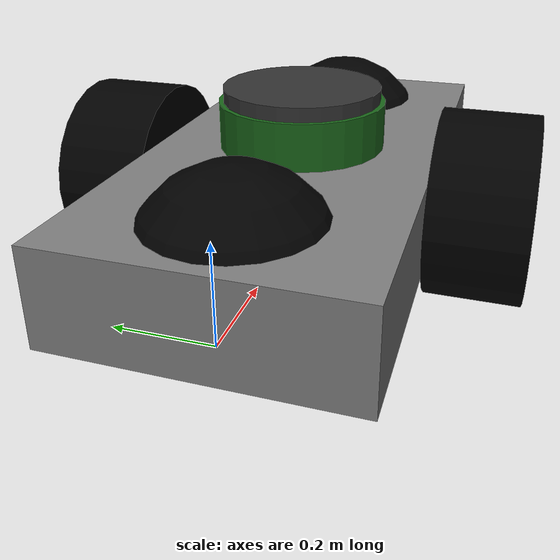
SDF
<?xml version="1.0" ?>
<sdf version="1.8">
  <model name="myrobot">
    <pose>0 0 0 0 0 0</pose>

    <link name="base_footprint"/>

    <link name="base_link">
        <pose>0.5 0 0.1 0 0 0</pose>

        <visual name="base_visual">
            <pose>0 0 0 0 0 0</pose>
            <geometry>
                <box>
                    <size>1.2 0.6 0.2</size>
                </box>
            </geometry>
            <material>
                <ambient>0.5 0.5 0.5 1</ambient>
                <diffuse>0.5 0.5 0.5 1</diffuse>
            </material>
        </visual>

        <collision name="base_collision">
            <pose>0 0 0 0 0 0</pose>
            <geometry>
                <box>
                    <size>1 0.6 0.2</size>
                </box>
            </geometry>
        </collision>

        <inertial>
            <pose>0 0 0 0 0 0</pose>
            <mass>10</mass>
            <inertia>
                <ixx>0.1</ixx>
                <iyy>0.1</iyy>
                <izz>0.1</izz>
                <ixy>0</ixy>
                <ixz>0</ixz>
                <iyz>0</iyz>
            </inertia>
        </inertial>
    </link>

    <link name="lbwheel">
        <pose>0.5 0.4 0.1 -1.57 0 0</pose>

         <visual name="lbwheel_visual">
            <pose>0 0 0 0 0 0</pose>
            <geometry>
                <cylinder>
                    <radius>0.2</radius>
                    <length>0.2</length>
                </cylinder>
            </geometry>
            <material>
                <ambient>0 0 0 1</ambient>
                <diffuse>0 0 0 1</diffuse>
            </material>
        </visual>

        <collision name="lbwheel_collision">
            <pose>0 0 0 0 0 0</pose>
            <geometry>
                <cylinder>
                    <radius>0.2</radius>
                    <length>0.2</length>
                </cylinder>
            </geometry>
            <surface>
            <friction>
            <ode>
              <mu>100</mu>
              <mu2>100</mu2>
            </ode>
            </friction>
            <contact>
            <ode>
              <soft_cfm>0</soft_cfm>
              <soft_erp>0.2</soft_erp>
              <kp>1e+5</kp>
              <kd>1</kd>
              <max_vel>0.01</max_vel>
              <min_depth>0.001</min_depth>
            </ode>
          </contact>
          </surface>
        </collision>

        <inertial>
            <pose>0 0 0 0 0 0</pose>
            <mass>2</mass>
            <inertia>
                <ixx>0.01</ixx>
                <iyy>0.01</iyy>
                <izz>0.01</izz>
                <ixy>0</ixy>
                <ixz>0</ixz>
                <iyz>0</iyz>
            </inertia>
        </inertial>
    </link>

    <link name="rbwheel">
        <pose>0.1 0 0.1 0 0 0</pose>

         <visual name="rbwheel_visual">
            <pose>0 0 0 0 0 0</pose>
            <geometry>
                <sphere>
                    <radius>0.2</radius>
                </sphere>
            </geometry>
            <material>
                <ambient>0 0 0 1</ambient>
                <diffuse>0 0 0 1</diffuse>
            </material>
        </visual>

        <collision name="rbwheel_collision">
            <pose>0 0 0 0 0 0</pose>
            <geometry>
                <sphere>
                    <radius>0.2</radius>
                </sphere>
            </geometry>
            <surface>
            <friction>
            <ode>
              <mu>0.01</mu>
              <mu2>0.01</mu2>
            </ode>
            </friction>
          <contact>
            <ode>
              <soft_cfm>0</soft_cfm>
              <soft_erp>0.2</soft_erp>
            </ode>
          </contact>
        </surface>
        </collision>

        <inertial>
            <pose>0 0 0 0 0 0</pose>
            <mass>0.5</mass>
            <inertia>
                <ixx>0.00001</ixx>
                <iyy>0.00001</iyy>
                <izz>0.00001</izz>
                <ixy>0</ixy>
                <ixz>0</ixz>
                <iyz>0</iyz>
            </inertia>
        </inertial>
    </link>

    <link name="rfwheel">
        <pose>0.5 -0.4 0.1 -1.57 0 0</pose>

         <visual name="rfwheel_visual">
            <pose>0 0 0 0 0 0</pose>
            <geometry>
                <cylinder>
                    <radius>0.2</radius>
                    <length>0.2</length>
                </cylinder>
            </geometry>
            <material>
                <ambient>0 0 0 1</ambient>
                <diffuse>0 0 0 1</diffuse>
            </material>
        </visual>

        <collision name="rfwheel_collision">
            <pose>0 0 0 0 0 0</pose>
            <geometry>
                <cylinder>
                    <radius>0.2</radius>
                    <length>0.2</length>
                </cylinder>
            </geometry>
            <surface>
            <friction>
            <ode>
              <mu>100</mu>
              <mu2>100</mu2>
            </ode>
            </friction>
            <contact>
            <ode>
              <soft_cfm>0</soft_cfm>
              <soft_erp>0.2</soft_erp>
              <kp>1e+5</kp>
              <kd>1</kd>
              <max_vel>0.01</max_vel>
              <min_depth>0.001</min_depth>
            </ode>
          </contact>
          </surface>
        </collision>

        <inertial>
            <pose>0 0 0 0 0 0</pose>
            <mass>2</mass>
            <inertia>
                <ixx>0.01</ixx>
                <iyy>0.01</iyy>
                <izz>0.01</izz>
                <ixy>0</ixy>
                <ixz>0</ixz>
                <iyz>0</iyz>
            </inertia>
        </inertial>
    </link>

    <link name="lfwheel">
        <pose>0.9 0 0.1 0 0 0</pose>

         <visual name="lfwheel_visual">
            <pose>0 0 0 0 0 0</pose>
            <geometry>
                <sphere>
                    <radius>0.2</radius>
                </sphere>
            </geometry>
            <material>
                <ambient>0 0 0 1</ambient>
                <diffuse>0 0 0 1</diffuse>
            </material>
        </visual>

        <collision name="lfwheel_collision">
            <pose>0 0 0 0 0 0</pose>
            <geometry>
                <sphere>
                    <radius>0.2</radius>
                </sphere>
            </geometry>
            <surface>
            <friction>
            <ode>
              <mu>0.01</mu>
              <mu2>0.01</mu2>
            </ode>
            </friction>
          <contact>
            <ode>
              <soft_cfm>0</soft_cfm>
              <soft_erp>0.2</soft_erp>
            </ode>
          </contact>
        </surface>
        </collision>

        <inertial>
            <pose>0 0 0 0 0 0</pose>
            <mass>0.5</mass>
            <inertia>
                <ixx>0.00001</ixx>
                <iyy>0.00001</iyy>
                <izz>0.00001</izz>
                <ixy>0</ixy>
                <ixz>0</ixz>
                <iyz>0</iyz>
            </inertia>
        </inertial>
    </link>

    <link name="shooter_base">
        <pose>0.5 0 0.25 0 0 0</pose>

         <visual name="shooter_base_visual">
            <pose>0 0 0 0 0 0</pose>
            <geometry>
                <cylinder>
                    <radius>0.18</radius>
                    <length>0.1</length>
                </cylinder>
            </geometry>
            <material>
                <ambient>0.1 0.4 0.1 1</ambient>
                <diffuse>0.1 0.4 0.1 1</diffuse>
            </material>
        </visual>

        <collision name="shooter_base_collision">
            <pose>0 0 0 0 0 0</pose>
            <geometry>
                <cylinder>
                    <radius>0.18</radius>
                    <length>0.2</length>
                </cylinder>
            </geometry>
        </collision>

        <inertial>
            <pose>0 0 0 0 0 0</pose>
            <mass>1</mass>
            <inertia>
                <ixx>0.01</ixx>
                <iyy>0.01</iyy>
                <izz>0.01</izz>
                <ixy>0</ixy>
                <ixz>0</ixz>
                <iyz>0</iyz>
            </inertia>
        </inertial>
    </link>

    <link name="rotator">
        <pose>0.5 0 0.315 0 0 0</pose>

         <visual name="rotator_visual">
            <pose>0 0 0 0 0 0</pose>
            <geometry>
                <cylinder>
                    <radius>0.17</radius>
                    <length>0.03</length>
                </cylinder>
            </geometry>
            <material>
                <ambient>0.2 0.2 0.2 1</ambient>
                <diffuse>0.2 0.2 0.2 1</diffuse>
            </material>
        </visual>

        <collision name="rotator_collision">
            <pose>0 0 0 0 0 0</pose>
            <geometry>
                <cylinder>
                    <radius>0.17</radius>
                    <length>0.03</length>
                </cylinder>
            </geometry>
        </collision>

        <inertial>
            <pose>0 0 0 0 0 0</pose>
            <mass>0.05</mass>
            <inertia>
                <ixx>0.001</ixx>
                <iyy>0.001</iyy>
                <izz>0.001</izz>
                <ixy>0</ixy>
                <ixz>0</ixz>
                <iyz>0</iyz>
            </inertia>
        </inertial>
    </link>

  <!-- joints-->

  <joint name="base_joint" type="fixed">
    <parent>base_footprint</parent>
    <child>base_link</child>
  </joint>

  <joint name="lbwheel_joint" type="revolute">
    <parent>base_link</parent>
    <child>lbwheel</child>
    <axis>
      <xyz>0 0 1</xyz>
        <limit>
          <effort>20</effort>
        </limit>
    </axis>
  </joint>

  <joint name="rfwheel_joint" type="revolute">
    <parent>base_link</parent>
    <child>rfwheel</child>
    <axis>
      <xyz>0 0 1</xyz>
        <limit>
          <effort>20</effort>
        </limit>
    </axis>
  </joint>

  <joint name="rbwheel_joint" type="ball">
    <parent>base_link</parent>
    <child>rbwheel</child>
  </joint>

  <joint name="lfwheel_joint" type="ball">
    <parent>base_link</parent>
    <child>lfwheel</child>
  </joint>

  <joint name="shooter_base_joint" type="fixed">
    <parent>base_link</parent>
    <child>shooter_base</child>
  </joint>

  <joint name="rotator_joint" type="revolute">
    <parent>shooter_base</parent>
    <child>rotator</child>
    <axis>
      <xyz>0 0 1</xyz>
      <limit>
        <lower>-3.14</lower>
        <upper>3.14</upper>
        <effort>1000</effort>
        <velocity>2.5</velocity>
      </limit>
        <dynamics>
            <damping>0.2</damping> <!-- Added damping to reduce wobbling -->
        </dynamics>
    </axis>
  </joint>

 <!-- Plugins -->

    <plugin filename="gz-sim-joint-state-publisher-system" name="gz::sim::systems::JointStatePublisher">
      <topic>joint_states</topic>
    </plugin>

    <!-- Joint position controller for the rotator -->
    <plugin filename="gz-sim-joint-position-controller-system" name="gz::sim::systems::JointPositionController">
      <joint_name>rotator_joint</joint_name>
      <topic>rotate_joint_position_controller/command</topic>
      <initial_position>0</initial_position>
        <pid>
            <p>1000</p>
            <i>50</i>
            <d>10</d>
        </pid>
    </plugin>

    <!-- Differential drive which controls the back 2 wheels and the front ones act as castor wheels -->
    <plugin filename="gz-sim-diff-drive-system" name="gz::sim::systems::DiffDrive">
      <left_joint>lbwheel_joint</left_joint>
      <right_joint>rbwheel_joint</right_joint>
    <wheel_separation>0.8</wheel_separation>
      <wheel_radius>0.2</wheel_radius>
      <max_linear_acceleration>2.0</max_linear_acceleration>
      <topic>cmd_vel</topic>
      <odom_topic>odom</odom_topic>
      <frame_id>odom</frame_id>
      <child_frame_id>base_footprint</child_frame_id>
      <odom_publisher_frequency>30</odom_publisher_frequency>
      <tf_topic>/tf</tf_topic>
    </plugin>

  </model>
</sdf>
